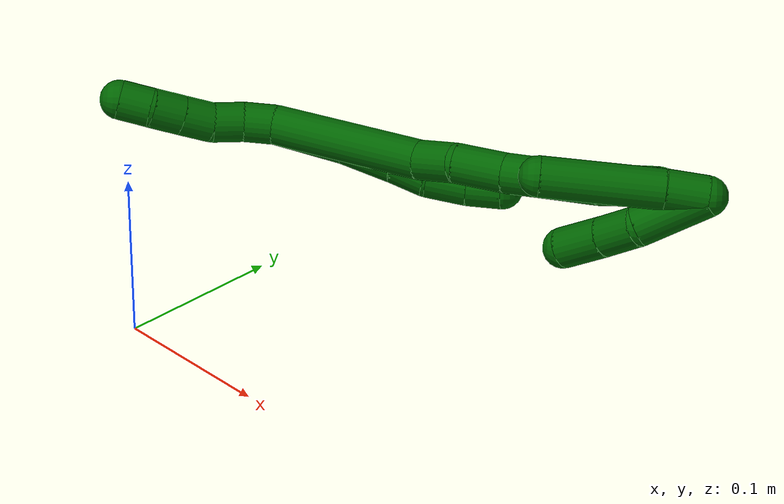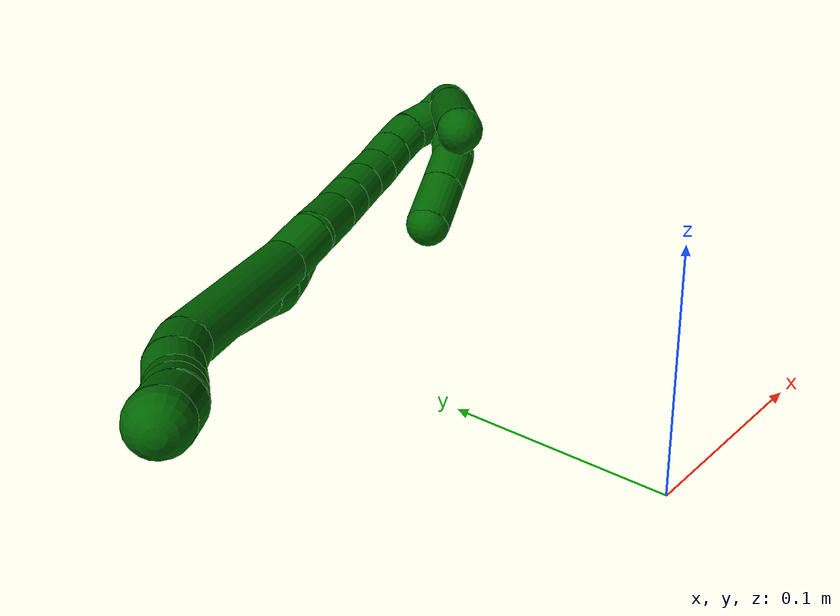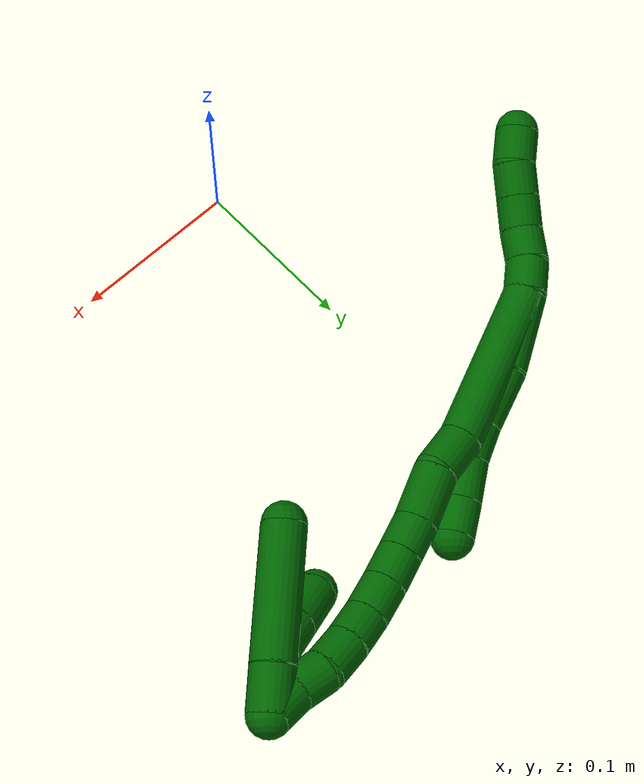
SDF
<sdf version="1.7">
 <world name="default">
  <model name="6">
   <static>0</static>
   <link name="6">
    <collision name="collision-cylinder-e_1_2_8">
     <pose>0.003742 0.005317 0.022228 -0.234791 0.162285 -0.019181</pose>
     <geometry><cylinder><radius>0.0125</radius><length>0.046318</length></cylinder></geometry>
     <surface>
      <friction><ode><mu>1.16</mu><mu2>1.16</mu2><slip1>0</slip1><slip2>0</slip2></ode></friction>
      <contact><ode><kp>1e+06</kp><kd>1</kd><max_vel>0</max_vel><min_depth>0.001</min_depth></ode></contact>
     </surface>
    </collision>
    <visual name="visual-cylinder-e_1_2_8">
     <pose>0.003742 0.005317 0.022228 -0.234791 0.162285 -0.019181</pose>
     <geometry><cylinder><radius>0.0125</radius><length>0.046318</length></cylinder></geometry>
     <material><ambient>0 0.392157 0.003922 1</ambient></material>
    </visual>
    <collision name="collision-cylinder-e_2_8_9">
     <pose>0.012565 0.016153 0.060014 -0.340912 0.298585 -0.051768</pose>
     <geometry><cylinder><radius>0.0125</radius><length>0.034545</length></cylinder></geometry>
     <surface>
      <friction><ode><mu>1.16</mu><mu2>1.16</mu2><slip1>0</slip1><slip2>0</slip2></ode></friction>
      <contact><ode><kp>1e+06</kp><kd>1</kd><max_vel>0</max_vel><min_depth>0.001</min_depth></ode></contact>
     </surface>
    </collision>
    <visual name="visual-cylinder-e_2_8_9">
     <pose>0.012565 0.016153 0.060014 -0.340912 0.298585 -0.051768</pose>
     <geometry><cylinder><radius>0.0125</radius><length>0.034545</length></cylinder></geometry>
     <material><ambient>0 0.392157 0.003922 1</ambient></material>
    </visual>
    <collision name="collision-cylinder-e_3_9_10">
     <pose>0.019402 0.025511 0.085488 -0.369351 0.163655 -0.030638</pose>
     <geometry><cylinder><radius>0.0125</radius><length>0.021554</length></cylinder></geometry>
     <surface>
      <friction><ode><mu>1.16</mu><mu2>1.16</mu2><slip1>0</slip1><slip2>0</slip2></ode></friction>
      <contact><ode><kp>1e+06</kp><kd>1</kd><max_vel>0</max_vel><min_depth>0.001</min_depth></ode></contact>
     </surface>
    </collision>
    <visual name="visual-cylinder-e_3_9_10">
     <pose>0.019402 0.025511 0.085488 -0.369351 0.163655 -0.030638</pose>
     <geometry><cylinder><radius>0.0125</radius><length>0.021554</length></cylinder></geometry>
     <material><ambient>0 0.392157 0.003922 1</ambient></material>
    </visual>
    <collision name="collision-cylinder-e_4_10_11">
     <pose>0.022517 0.031367 0.107979 -0.159056 0.106338 -0.008483</pose>
     <geometry><cylinder><radius>0.0125</radius><length>0.025617</length></cylinder></geometry>
     <surface>
      <friction><ode><mu>1.16</mu><mu2>1.16</mu2><slip1>0</slip1><slip2>0</slip2></ode></friction>
      <contact><ode><kp>1e+06</kp><kd>1</kd><max_vel>0</max_vel><min_depth>0.001</min_depth></ode></contact>
     </surface>
    </collision>
    <visual name="visual-cylinder-e_4_10_11">
     <pose>0.022517 0.031367 0.107979 -0.159056 0.106338 -0.008483</pose>
     <geometry><cylinder><radius>0.0125</radius><length>0.025617</length></cylinder></geometry>
     <material><ambient>0 0.392157 0.003922 1</ambient></material>
    </visual>
    <collision name="collision-cylinder-e_5_11_6">
     <pose>0.026204 0.033979 0.131272 -0.055372 0.213578 -0.005937</pose>
     <geometry><cylinder><radius>0.0125</radius><length>0.021966</length></cylinder></geometry>
     <surface>
      <friction><ode><mu>1.16</mu><mu2>1.16</mu2><slip1>0</slip1><slip2>0</slip2></ode></friction>
      <contact><ode><kp>1e+06</kp><kd>1</kd><max_vel>0</max_vel><min_depth>0.001</min_depth></ode></contact>
     </surface>
    </collision>
    <visual name="visual-cylinder-e_5_11_6">
     <pose>0.026204 0.033979 0.131272 -0.055372 0.213578 -0.005937</pose>
     <geometry><cylinder><radius>0.0125</radius><length>0.021966</length></cylinder></geometry>
     <material><ambient>0 0.392157 0.003922 1</ambient></material>
    </visual>
    <collision name="collision-cylinder-e_1_2_12">
     <pose>-0.00091 -0.000434 -0.009949 3.09804 -0.091164 -2.25059</pose>
     <geometry><cylinder><radius>0.0125</radius><length>0.02</length></cylinder></geometry>
     <surface>
      <friction><ode><mu>1.16</mu><mu2>1.16</mu2><slip1>0</slip1><slip2>0</slip2></ode></friction>
      <contact><ode><kp>1e+06</kp><kd>1</kd><max_vel>0</max_vel><min_depth>0.001</min_depth></ode></contact>
     </surface>
    </collision>
    <visual name="visual-cylinder-e_1_2_12">
     <pose>-0.00091 -0.000434 -0.009949 3.09804 -0.091164 -2.25059</pose>
     <geometry><cylinder><radius>0.0125</radius><length>0.02</length></cylinder></geometry>
     <material><ambient>0 0.392157 0.003922 1</ambient></material>
    </visual>
    <collision name="collision-cylinder-e_2_12_13">
     <pose>-0.000719 1.1e-05 -0.029798 -3.05314 0.110401 -1.79105</pose>
     <geometry><cylinder><radius>0.0125</radius><length>0.02</length></cylinder></geometry>
     <surface>
      <friction><ode><mu>1.16</mu><mu2>1.16</mu2><slip1>0</slip1><slip2>0</slip2></ode></friction>
      <contact><ode><kp>1e+06</kp><kd>1</kd><max_vel>0</max_vel><min_depth>0.001</min_depth></ode></contact>
     </surface>
    </collision>
    <visual name="visual-cylinder-e_2_12_13">
     <pose>-0.000719 1.1e-05 -0.029798 -3.05314 0.110401 -1.79105</pose>
     <geometry><cylinder><radius>0.0125</radius><length>0.02</length></cylinder></geometry>
     <material><ambient>0 0.392157 0.003922 1</ambient></material>
    </visual>
    <collision name="collision-cylinder-e_3_13_14">
     <pose>0.002711 -0.000648 -0.049302 2.98291 0.235014 1.95612</pose>
     <geometry><cylinder><radius>0.0125</radius><length>0.02</length></cylinder></geometry>
     <surface>
      <friction><ode><mu>1.16</mu><mu2>1.16</mu2><slip1>0</slip1><slip2>0</slip2></ode></friction>
      <contact><ode><kp>1e+06</kp><kd>1</kd><max_vel>0</max_vel><min_depth>0.001</min_depth></ode></contact>
     </surface>
    </collision>
    <visual name="visual-cylinder-e_3_13_14">
     <pose>0.002711 -0.000648 -0.049302 2.98291 0.235014 1.95612</pose>
     <geometry><cylinder><radius>0.0125</radius><length>0.02</length></cylinder></geometry>
     <material><ambient>0 0.392157 0.003922 1</ambient></material>
    </visual>
    <collision name="collision-cylinder-e_4_14_15">
     <pose>0.007428 -0.003797 -0.06848 2.97476 0.24118 1.93366</pose>
     <geometry><cylinder><radius>0.0125</radius><length>0.02</length></cylinder></geometry>
     <surface>
      <friction><ode><mu>1.16</mu><mu2>1.16</mu2><slip1>0</slip1><slip2>0</slip2></ode></friction>
      <contact><ode><kp>1e+06</kp><kd>1</kd><max_vel>0</max_vel><min_depth>0.001</min_depth></ode></contact>
     </surface>
    </collision>
    <visual name="visual-cylinder-e_4_14_15">
     <pose>0.007428 -0.003797 -0.06848 2.97476 0.24118 1.93366</pose>
     <geometry><cylinder><radius>0.0125</radius><length>0.02</length></cylinder></geometry>
     <material><ambient>0 0.392157 0.003922 1</ambient></material>
    </visual>
    <collision name="collision-cylinder-e_5_15_5">
     <pose>0.010013 -0.007343 -0.087865 2.94701 0.01963 0.200462</pose>
     <geometry><cylinder><radius>0.0125</radius><length>0.02</length></cylinder></geometry>
     <surface>
      <friction><ode><mu>1.16</mu><mu2>1.16</mu2><slip1>0</slip1><slip2>0</slip2></ode></friction>
      <contact><ode><kp>1e+06</kp><kd>1</kd><max_vel>0</max_vel><min_depth>0.001</min_depth></ode></contact>
     </surface>
    </collision>
    <visual name="visual-cylinder-e_5_15_5">
     <pose>0.010013 -0.007343 -0.087865 2.94701 0.01963 0.200462</pose>
     <geometry><cylinder><radius>0.0125</radius><length>0.02</length></cylinder></geometry>
     <material><ambient>0 0.392157 0.003922 1</ambient></material>
    </visual>
    <collision name="collision-cylinder-e_1_2_16">
     <pose>0.016735 0.009831 0.044712 -0.216427 0.350456 -0.038463</pose>
     <geometry><cylinder><radius>0.0125</radius><length>0.097486</length></cylinder></geometry>
     <surface>
      <friction><ode><mu>1.16</mu><mu2>1.16</mu2><slip1>0</slip1><slip2>0</slip2></ode></friction>
      <contact><ode><kp>1e+06</kp><kd>1</kd><max_vel>0</max_vel><min_depth>0.001</min_depth></ode></contact>
     </surface>
    </collision>
    <visual name="visual-cylinder-e_1_2_16">
     <pose>0.016735 0.009831 0.044712 -0.216427 0.350456 -0.038463</pose>
     <geometry><cylinder><radius>0.0125</radius><length>0.097486</length></cylinder></geometry>
     <material><ambient>0 0.392157 0.003922 1</ambient></material>
    </visual>
    <collision name="collision-cylinder-e_2_16_17">
     <pose>0.041523 0.020644 0.100104 -0.091734 0.644072 -0.030626</pose>
     <geometry><cylinder><radius>0.0125</radius><length>0.026824</length></cylinder></geometry>
     <surface>
      <friction><ode><mu>1.16</mu><mu2>1.16</mu2><slip1>0</slip1><slip2>0</slip2></ode></friction>
      <contact><ode><kp>1e+06</kp><kd>1</kd><max_vel>0</max_vel><min_depth>0.001</min_depth></ode></contact>
     </surface>
    </collision>
    <visual name="visual-cylinder-e_2_16_17">
     <pose>0.041523 0.020644 0.100104 -0.091734 0.644072 -0.030626</pose>
     <geometry><cylinder><radius>0.0125</radius><length>0.026824</length></cylinder></geometry>
     <material><ambient>0 0.392157 0.003922 1</ambient></material>
    </visual>
    <collision name="collision-cylinder-e_3_17_18">
     <pose>0.054815 0.024296 0.125952 -0.174188 0.327906 -0.028888</pose>
     <geometry><cylinder><radius>0.0125</radius><length>0.032535</length></cylinder></geometry>
     <surface>
      <friction><ode><mu>1.16</mu><mu2>1.16</mu2><slip1>0</slip1><slip2>0</slip2></ode></friction>
      <contact><ode><kp>1e+06</kp><kd>1</kd><max_vel>0</max_vel><min_depth>0.001</min_depth></ode></contact>
     </surface>
    </collision>
    <visual name="visual-cylinder-e_3_17_18">
     <pose>0.054815 0.024296 0.125952 -0.174188 0.327906 -0.028888</pose>
     <geometry><cylinder><radius>0.0125</radius><length>0.032535</length></cylinder></geometry>
     <material><ambient>0 0.392157 0.003922 1</ambient></material>
    </visual>
    <collision name="collision-cylinder-e_4_18_19">
     <pose>0.064621 0.028042 0.150402 -0.115537 0.454554 -0.026749</pose>
     <geometry><cylinder><radius>0.0125</radius><length>0.020803</length></cylinder></geometry>
     <surface>
      <friction><ode><mu>1.16</mu><mu2>1.16</mu2><slip1>0</slip1><slip2>0</slip2></ode></friction>
      <contact><ode><kp>1e+06</kp><kd>1</kd><max_vel>0</max_vel><min_depth>0.001</min_depth></ode></contact>
     </surface>
    </collision>
    <visual name="visual-cylinder-e_4_18_19">
     <pose>0.064621 0.028042 0.150402 -0.115537 0.454554 -0.026749</pose>
     <geometry><cylinder><radius>0.0125</radius><length>0.020803</length></cylinder></geometry>
     <material><ambient>0 0.392157 0.003922 1</ambient></material>
    </visual>
    <collision name="collision-cylinder-e_5_19_20">
     <pose>0.073701 0.030119 0.168573 -0.111941 0.467383 -0.026673</pose>
     <geometry><cylinder><radius>0.0125</radius><length>0.020035</length></cylinder></geometry>
     <surface>
      <friction><ode><mu>1.16</mu><mu2>1.16</mu2><slip1>0</slip1><slip2>0</slip2></ode></friction>
      <contact><ode><kp>1e+06</kp><kd>1</kd><max_vel>0</max_vel><min_depth>0.001</min_depth></ode></contact>
     </surface>
    </collision>
    <visual name="visual-cylinder-e_5_19_20">
     <pose>0.073701 0.030119 0.168573 -0.111941 0.467383 -0.026673</pose>
     <geometry><cylinder><radius>0.0125</radius><length>0.020035</length></cylinder></geometry>
     <material><ambient>0 0.392157 0.003922 1</ambient></material>
    </visual>
    <collision name="collision-cylinder-e_6_20_21">
     <pose>0.08335 0.032249 0.186595 -0.123189 0.508862 -0.032075</pose>
     <geometry><cylinder><radius>0.0125</radius><length>0.02108</length></cylinder></geometry>
     <surface>
      <friction><ode><mu>1.16</mu><mu2>1.16</mu2><slip1>0</slip1><slip2>0</slip2></ode></friction>
      <contact><ode><kp>1e+06</kp><kd>1</kd><max_vel>0</max_vel><min_depth>0.001</min_depth></ode></contact>
     </surface>
    </collision>
    <visual name="visual-cylinder-e_6_20_21">
     <pose>0.08335 0.032249 0.186595 -0.123189 0.508862 -0.032075</pose>
     <geometry><cylinder><radius>0.0125</radius><length>0.02108</length></cylinder></geometry>
     <material><ambient>0 0.392157 0.003922 1</ambient></material>
    </visual>
    <collision name="collision-cylinder-e_7_21_22">
     <pose>0.094421 0.033496 0.203839 -0.014387 0.631847 -0.004703</pose>
     <geometry><cylinder><radius>0.0125</radius><length>0.020102</length></cylinder></geometry>
     <surface>
      <friction><ode><mu>1.16</mu><mu2>1.16</mu2><slip1>0</slip1><slip2>0</slip2></ode></friction>
      <contact><ode><kp>1e+06</kp><kd>1</kd><max_vel>0</max_vel><min_depth>0.001</min_depth></ode></contact>
     </surface>
    </collision>
    <visual name="visual-cylinder-e_7_21_22">
     <pose>0.094421 0.033496 0.203839 -0.014387 0.631847 -0.004703</pose>
     <geometry><cylinder><radius>0.0125</radius><length>0.020102</length></cylinder></geometry>
     <material><ambient>0 0.392157 0.003922 1</ambient></material>
    </visual>
    <collision name="collision-cylinder-e_8_22_23">
     <pose>0.10722 0.034052 0.219937 -0.054927 0.708954 -0.020333</pose>
     <geometry><cylinder><radius>0.0125</radius><length>0.021081</length></cylinder></geometry>
     <surface>
      <friction><ode><mu>1.16</mu><mu2>1.16</mu2><slip1>0</slip1><slip2>0</slip2></ode></friction>
      <contact><ode><kp>1e+06</kp><kd>1</kd><max_vel>0</max_vel><min_depth>0.001</min_depth></ode></contact>
     </surface>
    </collision>
    <visual name="visual-cylinder-e_8_22_23">
     <pose>0.10722 0.034052 0.219937 -0.054927 0.708954 -0.020333</pose>
     <geometry><cylinder><radius>0.0125</radius><length>0.021081</length></cylinder></geometry>
     <material><ambient>0 0.392157 0.003922 1</ambient></material>
    </visual>
    <collision name="collision-cylinder-e_9_23_24">
     <pose>0.12178 0.036921 0.233871 -0.387915 0.875458 -0.183344</pose>
     <geometry><cylinder><radius>0.0125</radius><length>0.020052</length></cylinder></geometry>
     <surface>
      <friction><ode><mu>1.16</mu><mu2>1.16</mu2><slip1>0</slip1><slip2>0</slip2></ode></friction>
      <contact><ode><kp>1e+06</kp><kd>1</kd><max_vel>0</max_vel><min_depth>0.001</min_depth></ode></contact>
     </surface>
    </collision>
    <visual name="visual-cylinder-e_9_23_24">
     <pose>0.12178 0.036921 0.233871 -0.387915 0.875458 -0.183344</pose>
     <geometry><cylinder><radius>0.0125</radius><length>0.020052</length></cylinder></geometry>
     <material><ambient>0 0.392157 0.003922 1</ambient></material>
    </visual>
    <collision name="collision-cylinder-e_10_24_1">
     <pose>0.136521 0.039986 0.246891 -0.089619 0.781153 -0.036919</pose>
     <geometry><cylinder><radius>0.0125</radius><length>0.020003</length></cylinder></geometry>
     <surface>
      <friction><ode><mu>1.16</mu><mu2>1.16</mu2><slip1>0</slip1><slip2>0</slip2></ode></friction>
      <contact><ode><kp>1e+06</kp><kd>1</kd><max_vel>0</max_vel><min_depth>0.001</min_depth></ode></contact>
     </surface>
    </collision>
    <visual name="visual-cylinder-e_10_24_1">
     <pose>0.136521 0.039986 0.246891 -0.089619 0.781153 -0.036919</pose>
     <geometry><cylinder><radius>0.0125</radius><length>0.020003</length></cylinder></geometry>
     <material><ambient>0 0.392157 0.003922 1</ambient></material>
    </visual>
    <collision name="collision-cylinder-e_1_1_25">
     <pose>0.143514 0.03931 0.241282 3.0385 -0.003786 -0.073351</pose>
     <geometry><cylinder><radius>0.0125</radius><length>0.0255</length></cylinder></geometry>
     <surface>
      <friction><ode><mu>1.16</mu><mu2>1.16</mu2><slip1>0</slip1><slip2>0</slip2></ode></friction>
      <contact><ode><kp>1e+06</kp><kd>1</kd><max_vel>0</max_vel><min_depth>0.001</min_depth></ode></contact>
     </surface>
    </collision>
    <visual name="visual-cylinder-e_1_1_25">
     <pose>0.143514 0.03931 0.241282 3.0385 -0.003786 -0.073351</pose>
     <geometry><cylinder><radius>0.0125</radius><length>0.0255</length></cylinder></geometry>
     <material><ambient>0 0.392157 0.003922 1</ambient></material>
    </visual>
    <collision name="collision-cylinder-e_2_25_4">
     <pose>0.141937 0.03608 0.191431 3.09004 -0.041066 -1.34524</pose>
     <geometry><cylinder><radius>0.0125</radius><length>0.0745</length></cylinder></geometry>
     <surface>
      <friction><ode><mu>1.16</mu><mu2>1.16</mu2><slip1>0</slip1><slip2>0</slip2></ode></friction>
      <contact><ode><kp>1e+06</kp><kd>1</kd><max_vel>0</max_vel><min_depth>0.001</min_depth></ode></contact>
     </surface>
    </collision>
    <visual name="visual-cylinder-e_2_25_4">
     <pose>0.141937 0.03608 0.191431 3.09004 -0.041066 -1.34524</pose>
     <geometry><cylinder><radius>0.0125</radius><length>0.0745</length></cylinder></geometry>
     <material><ambient>0 0.392157 0.003922 1</ambient></material>
    </visual>
    <collision name="collision-cylinder-e_1_1_26">
     <pose>0.135776 0.050095 0.234598 -2.68665 -0.346597 1.29498</pose>
     <geometry><cylinder><radius>0.0125</radius><length>0.045845</length></cylinder></geometry>
     <surface>
      <friction><ode><mu>1.16</mu><mu2>1.16</mu2><slip1>0</slip1><slip2>0</slip2></ode></friction>
      <contact><ode><kp>1e+06</kp><kd>1</kd><max_vel>0</max_vel><min_depth>0.001</min_depth></ode></contact>
     </surface>
    </collision>
    <visual name="visual-cylinder-e_1_1_26">
     <pose>0.135776 0.050095 0.234598 -2.68665 -0.346597 1.29498</pose>
     <geometry><cylinder><radius>0.0125</radius><length>0.045845</length></cylinder></geometry>
     <material><ambient>0 0.392157 0.003922 1</ambient></material>
    </visual>
    <collision name="collision-cylinder-e_2_26_27">
     <pose>0.120324 0.062668 0.206175 -2.81186 -0.675224 2.25644</pose>
     <geometry><cylinder><radius>0.0125</radius><length>0.024527</length></cylinder></geometry>
     <surface>
      <friction><ode><mu>1.16</mu><mu2>1.16</mu2><slip1>0</slip1><slip2>0</slip2></ode></friction>
      <contact><ode><kp>1e+06</kp><kd>1</kd><max_vel>0</max_vel><min_depth>0.001</min_depth></ode></contact>
     </surface>
    </collision>
    <visual name="visual-cylinder-e_2_26_27">
     <pose>0.120324 0.062668 0.206175 -2.81186 -0.675224 2.25644</pose>
     <geometry><cylinder><radius>0.0125</radius><length>0.024527</length></cylinder></geometry>
     <material><ambient>0 0.392157 0.003922 1</ambient></material>
    </visual>
    <collision name="collision-cylinder-e_3_27_3">
     <pose>0.103486 0.069209 0.186005 -2.84124 -0.667622 2.31874</pose>
     <geometry><cylinder><radius>0.0125</radius><length>0.029629</length></cylinder></geometry>
     <surface>
      <friction><ode><mu>1.16</mu><mu2>1.16</mu2><slip1>0</slip1><slip2>0</slip2></ode></friction>
      <contact><ode><kp>1e+06</kp><kd>1</kd><max_vel>0</max_vel><min_depth>0.001</min_depth></ode></contact>
     </surface>
    </collision>
    <visual name="visual-cylinder-e_3_27_3">
     <pose>0.103486 0.069209 0.186005 -2.84124 -0.667622 2.31874</pose>
     <geometry><cylinder><radius>0.0125</radius><length>0.029629</length></cylinder></geometry>
     <material><ambient>0 0.392157 0.003922 1</ambient></material>
    </visual>
    <collision name="collision-sphere-3">
     <pose>0.094314 0.072651 0.174892 0 -0 0</pose>
     <geometry><sphere><radius>0.0125</radius></sphere></geometry>
     <surface>
      <friction><ode><mu>1.16</mu><mu2>1.16</mu2><slip1>0</slip1><slip2>0</slip2></ode></friction>
      <contact><ode><kp>1e+06</kp><kd>1</kd><max_vel>0</max_vel><min_depth>0.001</min_depth></ode></contact>
     </surface>
    </collision>
    <visual name="visual-sphere-3">
     <pose>0.094314 0.072651 0.174892 0 -0 0</pose>
     <geometry><sphere><radius>0.0125</radius></sphere></geometry>
     <material><ambient>0 0.392157 0.003922 1</ambient></material>
    </visual>
    <collision name="collision-sphere-27">
     <pose>0.112658 0.065767 0.197118 0 -0 0</pose>
     <geometry><sphere><radius>0.0125</radius></sphere></geometry>
     <surface>
      <friction><ode><mu>1.16</mu><mu2>1.16</mu2><slip1>0</slip1><slip2>0</slip2></ode></friction>
      <contact><ode><kp>1e+06</kp><kd>1</kd><max_vel>0</max_vel><min_depth>0.001</min_depth></ode></contact>
     </surface>
    </collision>
    <visual name="visual-sphere-27">
     <pose>0.112658 0.065767 0.197118 0 -0 0</pose>
     <geometry><sphere><radius>0.0125</radius></sphere></geometry>
     <material><ambient>0 0.392157 0.003922 1</ambient></material>
    </visual>
    <collision name="collision-sphere-26">
     <pose>0.127989 0.059569 0.215232 0 -0 0</pose>
     <geometry><sphere><radius>0.0125</radius></sphere></geometry>
     <surface>
      <friction><ode><mu>1.16</mu><mu2>1.16</mu2><slip1>0</slip1><slip2>0</slip2></ode></friction>
      <contact><ode><kp>1e+06</kp><kd>1</kd><max_vel>0</max_vel><min_depth>0.001</min_depth></ode></contact>
     </surface>
    </collision>
    <visual name="visual-sphere-26">
     <pose>0.127989 0.059569 0.215232 0 -0 0</pose>
     <geometry><sphere><radius>0.0125</radius></sphere></geometry>
     <material><ambient>0 0.392157 0.003922 1</ambient></material>
    </visual>
    <collision name="collision-sphere-4">
     <pose>0.140407 0.034162 0.154262 0 -0 0</pose>
     <geometry><sphere><radius>0.0125</radius></sphere></geometry>
     <surface>
      <friction><ode><mu>1.16</mu><mu2>1.16</mu2><slip1>0</slip1><slip2>0</slip2></ode></friction>
      <contact><ode><kp>1e+06</kp><kd>1</kd><max_vel>0</max_vel><min_depth>0.001</min_depth></ode></contact>
     </surface>
    </collision>
    <visual name="visual-sphere-4">
     <pose>0.140407 0.034162 0.154262 0 -0 0</pose>
     <geometry><sphere><radius>0.0125</radius></sphere></geometry>
     <material><ambient>0 0.392157 0.003922 1</ambient></material>
    </visual>
    <collision name="collision-sphere-25">
     <pose>0.143466 0.037998 0.2286 0 -0 0</pose>
     <geometry><sphere><radius>0.0125</radius></sphere></geometry>
     <surface>
      <friction><ode><mu>1.16</mu><mu2>1.16</mu2><slip1>0</slip1><slip2>0</slip2></ode></friction>
      <contact><ode><kp>1e+06</kp><kd>1</kd><max_vel>0</max_vel><min_depth>0.001</min_depth></ode></contact>
     </surface>
    </collision>
    <visual name="visual-sphere-25">
     <pose>0.143466 0.037998 0.2286 0 -0 0</pose>
     <geometry><sphere><radius>0.0125</radius></sphere></geometry>
     <material><ambient>0 0.392157 0.003922 1</ambient></material>
    </visual>
    <collision name="collision-sphere-1">
     <pose>0.143563 0.040622 0.253964 0 -0 0</pose>
     <geometry><sphere><radius>0.0125</radius></sphere></geometry>
     <surface>
      <friction><ode><mu>1.16</mu><mu2>1.16</mu2><slip1>0</slip1><slip2>0</slip2></ode></friction>
      <contact><ode><kp>1e+06</kp><kd>1</kd><max_vel>0</max_vel><min_depth>0.001</min_depth></ode></contact>
     </surface>
    </collision>
    <visual name="visual-sphere-1">
     <pose>0.143563 0.040622 0.253964 0 -0 0</pose>
     <geometry><sphere><radius>0.0125</radius></sphere></geometry>
     <material><ambient>0 0.392157 0.003922 1</ambient></material>
    </visual>
    <collision name="collision-sphere-24">
     <pose>0.129479 0.039351 0.239817 0 -0 0</pose>
     <geometry><sphere><radius>0.0125</radius></sphere></geometry>
     <surface>
      <friction><ode><mu>1.16</mu><mu2>1.16</mu2><slip1>0</slip1><slip2>0</slip2></ode></friction>
      <contact><ode><kp>1e+06</kp><kd>1</kd><max_vel>0</max_vel><min_depth>0.001</min_depth></ode></contact>
     </surface>
    </collision>
    <visual name="visual-sphere-24">
     <pose>0.129479 0.039351 0.239817 0 -0 0</pose>
     <geometry><sphere><radius>0.0125</radius></sphere></geometry>
     <material><ambient>0 0.392157 0.003922 1</ambient></material>
    </visual>
    <collision name="collision-sphere-23">
     <pose>0.114082 0.034491 0.227926 0 -0 0</pose>
     <geometry><sphere><radius>0.0125</radius></sphere></geometry>
     <surface>
      <friction><ode><mu>1.16</mu><mu2>1.16</mu2><slip1>0</slip1><slip2>0</slip2></ode></friction>
      <contact><ode><kp>1e+06</kp><kd>1</kd><max_vel>0</max_vel><min_depth>0.001</min_depth></ode></contact>
     </surface>
    </collision>
    <visual name="visual-sphere-23">
     <pose>0.114082 0.034491 0.227926 0 -0 0</pose>
     <geometry><sphere><radius>0.0125</radius></sphere></geometry>
     <material><ambient>0 0.392157 0.003922 1</ambient></material>
    </visual>
    <collision name="collision-sphere-22">
     <pose>0.100357 0.033613 0.211948 0 -0 0</pose>
     <geometry><sphere><radius>0.0125</radius></sphere></geometry>
     <surface>
      <friction><ode><mu>1.16</mu><mu2>1.16</mu2><slip1>0</slip1><slip2>0</slip2></ode></friction>
      <contact><ode><kp>1e+06</kp><kd>1</kd><max_vel>0</max_vel><min_depth>0.001</min_depth></ode></contact>
     </surface>
    </collision>
    <visual name="visual-sphere-22">
     <pose>0.100357 0.033613 0.211948 0 -0 0</pose>
     <geometry><sphere><radius>0.0125</radius></sphere></geometry>
     <material><ambient>0 0.392157 0.003922 1</ambient></material>
    </visual>
    <collision name="collision-sphere-21">
     <pose>0.088485 0.03338 0.195729 0 -0 0</pose>
     <geometry><sphere><radius>0.0125</radius></sphere></geometry>
     <surface>
      <friction><ode><mu>1.16</mu><mu2>1.16</mu2><slip1>0</slip1><slip2>0</slip2></ode></friction>
      <contact><ode><kp>1e+06</kp><kd>1</kd><max_vel>0</max_vel><min_depth>0.001</min_depth></ode></contact>
     </surface>
    </collision>
    <visual name="visual-sphere-21">
     <pose>0.088485 0.03338 0.195729 0 -0 0</pose>
     <geometry><sphere><radius>0.0125</radius></sphere></geometry>
     <material><ambient>0 0.392157 0.003922 1</ambient></material>
    </visual>
    <collision name="collision-sphere-6">
     <pose>0.028532 0.034573 0.141988 0 -0 0</pose>
     <geometry><sphere><radius>0.0125</radius></sphere></geometry>
     <surface>
      <friction><ode><mu>1.16</mu><mu2>1.16</mu2><slip1>0</slip1><slip2>0</slip2></ode></friction>
      <contact><ode><kp>1e+06</kp><kd>1</kd><max_vel>0</max_vel><min_depth>0.001</min_depth></ode></contact>
     </surface>
    </collision>
    <visual name="visual-sphere-6">
     <pose>0.028532 0.034573 0.141988 0 -0 0</pose>
     <geometry><sphere><radius>0.0125</radius></sphere></geometry>
     <material><ambient>0 0.392157 0.003922 1</ambient></material>
    </visual>
    <collision name="collision-sphere-11">
     <pose>0.023876 0.033385 0.120555 0 -0 0</pose>
     <geometry><sphere><radius>0.0125</radius></sphere></geometry>
     <surface>
      <friction><ode><mu>1.16</mu><mu2>1.16</mu2><slip1>0</slip1><slip2>0</slip2></ode></friction>
      <contact><ode><kp>1e+06</kp><kd>1</kd><max_vel>0</max_vel><min_depth>0.001</min_depth></ode></contact>
     </surface>
    </collision>
    <visual name="visual-sphere-11">
     <pose>0.023876 0.033385 0.120555 0 -0 0</pose>
     <geometry><sphere><radius>0.0125</radius></sphere></geometry>
     <material><ambient>0 0.392157 0.003922 1</ambient></material>
    </visual>
    <collision name="collision-sphere-10">
     <pose>0.021157 0.02935 0.095404 0 -0 0</pose>
     <geometry><sphere><radius>0.0125</radius></sphere></geometry>
     <surface>
      <friction><ode><mu>1.16</mu><mu2>1.16</mu2><slip1>0</slip1><slip2>0</slip2></ode></friction>
      <contact><ode><kp>1e+06</kp><kd>1</kd><max_vel>0</max_vel><min_depth>0.001</min_depth></ode></contact>
     </surface>
    </collision>
    <visual name="visual-sphere-10">
     <pose>0.021157 0.02935 0.095404 0 -0 0</pose>
     <geometry><sphere><radius>0.0125</radius></sphere></geometry>
     <material><ambient>0 0.392157 0.003922 1</ambient></material>
    </visual>
    <collision name="collision-sphere-9">
     <pose>0.017646 0.021673 0.075572 0 -0 0</pose>
     <geometry><sphere><radius>0.0125</radius></sphere></geometry>
     <surface>
      <friction><ode><mu>1.16</mu><mu2>1.16</mu2><slip1>0</slip1><slip2>0</slip2></ode></friction>
      <contact><ode><kp>1e+06</kp><kd>1</kd><max_vel>0</max_vel><min_depth>0.001</min_depth></ode></contact>
     </surface>
    </collision>
    <visual name="visual-sphere-9">
     <pose>0.017646 0.021673 0.075572 0 -0 0</pose>
     <geometry><sphere><radius>0.0125</radius></sphere></geometry>
     <material><ambient>0 0.392157 0.003922 1</ambient></material>
    </visual>
    <collision name="collision-sphere-2">
     <geometry><sphere><radius>0.0125</radius></sphere></geometry>
     <surface>
      <friction><ode><mu>1.16</mu><mu2>1.16</mu2><slip1>0</slip1><slip2>0</slip2></ode></friction>
      <contact><ode><kp>1e+06</kp><kd>1</kd><max_vel>0</max_vel><min_depth>0.001</min_depth></ode></contact>
     </surface>
    </collision>
    <visual name="visual-sphere-2">
     <geometry><sphere><radius>0.0125</radius></sphere></geometry>
     <material><ambient>0 0.392157 0.003922 1</ambient></material>
    </visual>
    <collision name="collision-sphere-19">
     <pose>0.069188 0.02912 0.159685 0 -0 0</pose>
     <geometry><sphere><radius>0.0125</radius></sphere></geometry>
     <surface>
      <friction><ode><mu>1.16</mu><mu2>1.16</mu2><slip1>0</slip1><slip2>0</slip2></ode></friction>
      <contact><ode><kp>1e+06</kp><kd>1</kd><max_vel>0</max_vel><min_depth>0.001</min_depth></ode></contact>
     </surface>
    </collision>
    <visual name="visual-sphere-19">
     <pose>0.069188 0.02912 0.159685 0 -0 0</pose>
     <geometry><sphere><radius>0.0125</radius></sphere></geometry>
     <material><ambient>0 0.392157 0.003922 1</ambient></material>
    </visual>
    <collision name="collision-sphere-8">
     <pose>0.007484 0.010634 0.044456 0 -0 0</pose>
     <geometry><sphere><radius>0.0125</radius></sphere></geometry>
     <surface>
      <friction><ode><mu>1.16</mu><mu2>1.16</mu2><slip1>0</slip1><slip2>0</slip2></ode></friction>
      <contact><ode><kp>1e+06</kp><kd>1</kd><max_vel>0</max_vel><min_depth>0.001</min_depth></ode></contact>
     </surface>
    </collision>
    <visual name="visual-sphere-8">
     <pose>0.007484 0.010634 0.044456 0 -0 0</pose>
     <geometry><sphere><radius>0.0125</radius></sphere></geometry>
     <material><ambient>0 0.392157 0.003922 1</ambient></material>
    </visual>
    <collision name="collision-sphere-12">
     <pose>-0.001821 -0.000867 -0.019898 0 -0 0</pose>
     <geometry><sphere><radius>0.0125</radius></sphere></geometry>
     <surface>
      <friction><ode><mu>1.16</mu><mu2>1.16</mu2><slip1>0</slip1><slip2>0</slip2></ode></friction>
      <contact><ode><kp>1e+06</kp><kd>1</kd><max_vel>0</max_vel><min_depth>0.001</min_depth></ode></contact>
     </surface>
    </collision>
    <visual name="visual-sphere-12">
     <pose>-0.001821 -0.000867 -0.019898 0 -0 0</pose>
     <geometry><sphere><radius>0.0125</radius></sphere></geometry>
     <material><ambient>0 0.392157 0.003922 1</ambient></material>
    </visual>
    <collision name="collision-sphere-13">
     <pose>0.000383 0.000889 -0.039699 0 -0 0</pose>
     <geometry><sphere><radius>0.0125</radius></sphere></geometry>
     <surface>
      <friction><ode><mu>1.16</mu><mu2>1.16</mu2><slip1>0</slip1><slip2>0</slip2></ode></friction>
      <contact><ode><kp>1e+06</kp><kd>1</kd><max_vel>0</max_vel><min_depth>0.001</min_depth></ode></contact>
     </surface>
    </collision>
    <visual name="visual-sphere-13">
     <pose>0.000383 0.000889 -0.039699 0 -0 0</pose>
     <geometry><sphere><radius>0.0125</radius></sphere></geometry>
     <material><ambient>0 0.392157 0.003922 1</ambient></material>
    </visual>
    <collision name="collision-sphere-14">
     <pose>0.00504 -0.002185 -0.058904 0 -0 0</pose>
     <geometry><sphere><radius>0.0125</radius></sphere></geometry>
     <surface>
      <friction><ode><mu>1.16</mu><mu2>1.16</mu2><slip1>0</slip1><slip2>0</slip2></ode></friction>
      <contact><ode><kp>1e+06</kp><kd>1</kd><max_vel>0</max_vel><min_depth>0.001</min_depth></ode></contact>
     </surface>
    </collision>
    <visual name="visual-sphere-14">
     <pose>0.00504 -0.002185 -0.058904 0 -0 0</pose>
     <geometry><sphere><radius>0.0125</radius></sphere></geometry>
     <material><ambient>0 0.392157 0.003922 1</ambient></material>
    </visual>
    <collision name="collision-sphere-15">
     <pose>0.009817 -0.00541 -0.078056 0 -0 0</pose>
     <geometry><sphere><radius>0.0125</radius></sphere></geometry>
     <surface>
      <friction><ode><mu>1.16</mu><mu2>1.16</mu2><slip1>0</slip1><slip2>0</slip2></ode></friction>
      <contact><ode><kp>1e+06</kp><kd>1</kd><max_vel>0</max_vel><min_depth>0.001</min_depth></ode></contact>
     </surface>
    </collision>
    <visual name="visual-sphere-15">
     <pose>0.009817 -0.00541 -0.078056 0 -0 0</pose>
     <geometry><sphere><radius>0.0125</radius></sphere></geometry>
     <material><ambient>0 0.392157 0.003922 1</ambient></material>
    </visual>
    <collision name="collision-sphere-5">
     <pose>0.010209 -0.009276 -0.097675 0 -0 0</pose>
     <geometry><sphere><radius>0.0125</radius></sphere></geometry>
     <surface>
      <friction><ode><mu>1.16</mu><mu2>1.16</mu2><slip1>0</slip1><slip2>0</slip2></ode></friction>
      <contact><ode><kp>1e+06</kp><kd>1</kd><max_vel>0</max_vel><min_depth>0.001</min_depth></ode></contact>
     </surface>
    </collision>
    <visual name="visual-sphere-5">
     <pose>0.010209 -0.009276 -0.097675 0 -0 0</pose>
     <geometry><sphere><radius>0.0125</radius></sphere></geometry>
     <material><ambient>0 0.392157 0.003922 1</ambient></material>
    </visual>
    <collision name="collision-sphere-16">
     <pose>0.033469 0.019662 0.089424 0 -0 0</pose>
     <geometry><sphere><radius>0.0125</radius></sphere></geometry>
     <surface>
      <friction><ode><mu>1.16</mu><mu2>1.16</mu2><slip1>0</slip1><slip2>0</slip2></ode></friction>
      <contact><ode><kp>1e+06</kp><kd>1</kd><max_vel>0</max_vel><min_depth>0.001</min_depth></ode></contact>
     </surface>
    </collision>
    <visual name="visual-sphere-16">
     <pose>0.033469 0.019662 0.089424 0 -0 0</pose>
     <geometry><sphere><radius>0.0125</radius></sphere></geometry>
     <material><ambient>0 0.392157 0.003922 1</ambient></material>
    </visual>
    <collision name="collision-sphere-17">
     <pose>0.049576 0.021627 0.110784 0 -0 0</pose>
     <geometry><sphere><radius>0.0125</radius></sphere></geometry>
     <surface>
      <friction><ode><mu>1.16</mu><mu2>1.16</mu2><slip1>0</slip1><slip2>0</slip2></ode></friction>
      <contact><ode><kp>1e+06</kp><kd>1</kd><max_vel>0</max_vel><min_depth>0.001</min_depth></ode></contact>
     </surface>
    </collision>
    <visual name="visual-sphere-17">
     <pose>0.049576 0.021627 0.110784 0 -0 0</pose>
     <geometry><sphere><radius>0.0125</radius></sphere></geometry>
     <material><ambient>0 0.392157 0.003922 1</ambient></material>
    </visual>
    <collision name="collision-sphere-18">
     <pose>0.060054 0.026965 0.141119 0 -0 0</pose>
     <geometry><sphere><radius>0.0125</radius></sphere></geometry>
     <surface>
      <friction><ode><mu>1.16</mu><mu2>1.16</mu2><slip1>0</slip1><slip2>0</slip2></ode></friction>
      <contact><ode><kp>1e+06</kp><kd>1</kd><max_vel>0</max_vel><min_depth>0.001</min_depth></ode></contact>
     </surface>
    </collision>
    <visual name="visual-sphere-18">
     <pose>0.060054 0.026965 0.141119 0 -0 0</pose>
     <geometry><sphere><radius>0.0125</radius></sphere></geometry>
     <material><ambient>0 0.392157 0.003922 1</ambient></material>
    </visual>
    <collision name="collision-sphere-20">
     <pose>0.078215 0.031118 0.17746 0 -0 0</pose>
     <geometry><sphere><radius>0.0125</radius></sphere></geometry>
     <surface>
      <friction><ode><mu>1.16</mu><mu2>1.16</mu2><slip1>0</slip1><slip2>0</slip2></ode></friction>
      <contact><ode><kp>1e+06</kp><kd>1</kd><max_vel>0</max_vel><min_depth>0.001</min_depth></ode></contact>
     </surface>
    </collision>
    <visual name="visual-sphere-20">
     <pose>0.078215 0.031118 0.17746 0 -0 0</pose>
     <geometry><sphere><radius>0.0125</radius></sphere></geometry>
     <material><ambient>0 0.392157 0.003922 1</ambient></material>
    </visual>
    <inertial>
     <pose>0.063282 0.02578 0.11649 0 -0 0</pose>
     <mass>0.75</mass>
     <inertia><ixx>0.000102</ixx><ixy>0</ixy><ixz>0</ixz><iyy>8.9e-05</iyy><iyz>0</iyz><izz>-5e-05</izz></inertia>
    </inertial>
   </link>
   <pose>-0.076404 0.181432 0.034531 -1.65993 -0.604204 -0.702028</pose>
  </model>
 </world>
</sdf>
